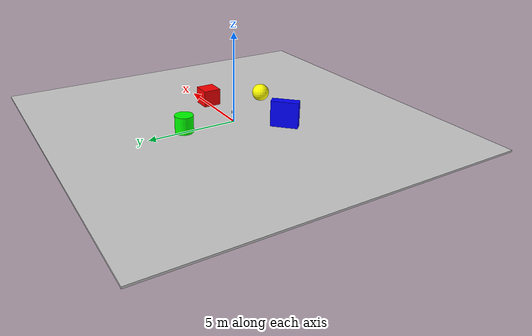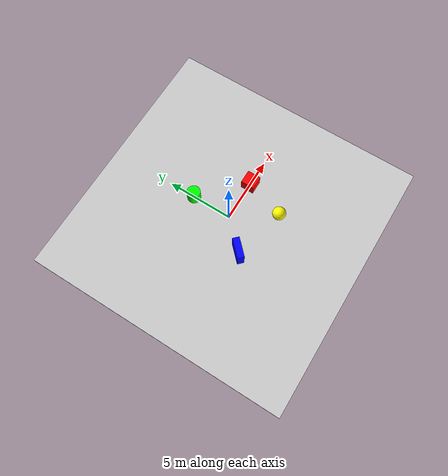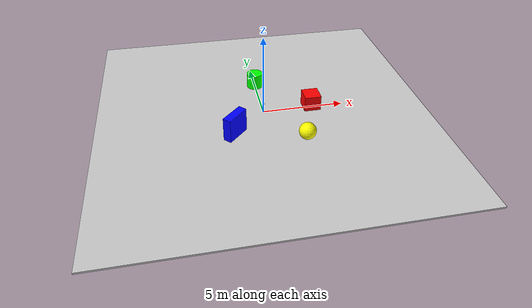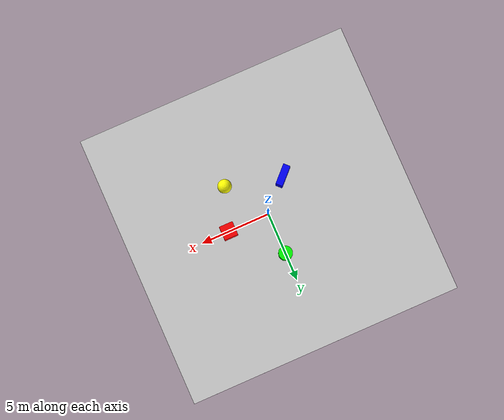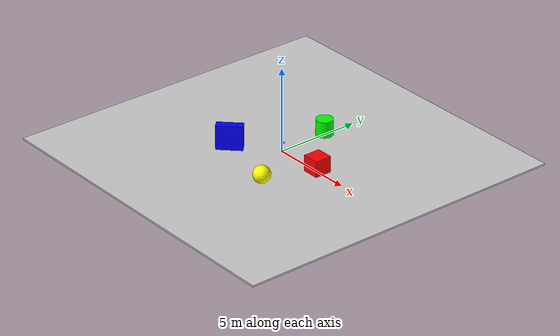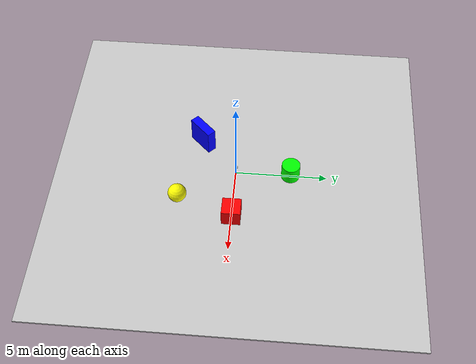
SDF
<?xml version="1.0" ?>
<sdf version="1.6">
  <world name="cpu_lidar_hard_headless">

    <physics name="1ms" type="dart">
      <max_step_size>0.001</max_step_size>
      <real_time_factor>1.0</real_time_factor>
      <dart>
        <collision_detector>bullet</collision_detector>
      </dart>
    </physics>

    <plugin
      filename="gz-sim-physics-system"
      name="gz::sim::systems::Physics">
    </plugin>
    <plugin
      filename="gz-sim-cpu-lidar-system"
      name="gz::sim::systems::CpuLidar">
    </plugin>
    <plugin
      filename="gz-sim-scene-broadcaster-system"
      name="gz::sim::systems::SceneBroadcaster">
    </plugin>
    <plugin
      filename="gz-sim-user-commands-system"
      name="gz::sim::systems::UserCommands">
    </plugin>

    <light type="directional" name="sun">
      <cast_shadows>true</cast_shadows>
      <pose>0 0 10 0 0 0</pose>
      <diffuse>0.8 0.8 0.8 1</diffuse>
      <specular>0.2 0.2 0.2 1</specular>
      <attenuation>
        <range>1000</range>
        <constant>0.9</constant>
        <linear>0.01</linear>
        <quadratic>0.001</quadratic>
      </attenuation>
      <direction>-0.5 0.1 -0.9</direction>
    </light>

    <!-- Ground plane -->
    <model name="ground_plane">
      <static>true</static>
      <link name="link">
        <collision name="collision">
          <geometry>
            <box>
              <size>20 20 0.1</size>
            </box>
          </geometry>
        </collision>
        <visual name="visual">
          <geometry>
            <box>
              <size>20 20 0.1</size>
            </box>
          </geometry>
          <material>
            <ambient>0.8 0.8 0.8 1</ambient>
            <diffuse>0.8 0.8 0.8 1</diffuse>
            <specular>0.8 0.8 0.8 1</specular>
          </material>
        </visual>
      </link>
    </model>

    <!-- Obstacle: box in front (+X) -->
    <model name="box_front">
      <static>true</static>
      <pose>3 0 0.5 0 0 0</pose>
      <link name="link">
        <collision name="collision">
          <geometry><box><size>1 1 1</size></box></geometry>
        </collision>
        <visual name="visual">
          <geometry><box><size>1 1 1</size></box></geometry>
          <material>
            <ambient>1 0 0 1</ambient>
            <diffuse>1 0 0 1</diffuse>
          </material>
        </visual>
      </link>
    </model>

    <!-- Obstacle: cylinder to the left (+Y) -->
    <model name="cylinder_left">
      <static>true</static>
      <pose>0 3 0.5 0 0 0</pose>
      <link name="link">
        <collision name="collision">
          <geometry>
            <cylinder><radius>0.5</radius><length>1.0</length></cylinder>
          </geometry>
        </collision>
        <visual name="visual">
          <geometry>
            <cylinder><radius>0.5</radius><length>1.0</length></cylinder>
          </geometry>
          <material>
            <ambient>0 1 0 1</ambient>
            <diffuse>0 1 0 1</diffuse>
          </material>
        </visual>
      </link>
    </model>

    <!-- Obstacle: box behind-right (-X, -Y) -->
    <model name="box_behind_right">
      <static>true</static>
      <pose>-2 -2 0.75 0 0 0.785</pose>
      <link name="link">
        <collision name="collision">
          <geometry><box><size>1.5 0.5 1.5</size></box></geometry>
        </collision>
        <visual name="visual">
          <geometry><box><size>1.5 0.5 1.5</size></box></geometry>
          <material>
            <ambient>0 0 1 1</ambient>
            <diffuse>0 0 1 1</diffuse>
          </material>
        </visual>
      </link>
    </model>

    <!-- Obstacle: sphere to the right (+X, -Y) -->
    <model name="sphere_right">
      <static>true</static>
      <pose>2 -3 0.5 0 0 0</pose>
      <link name="link">
        <collision name="collision">
          <geometry><sphere><radius>0.5</radius></sphere></geometry>
        </collision>
        <visual name="visual">
          <geometry><sphere><radius>0.5</radius></sphere></geometry>
          <material>
            <ambient>1 1 0 1</ambient>
            <diffuse>1 1 0 1</diffuse>
          </material>
        </visual>
      </link>
    </model>

    <!-- Lidar platform with CPU lidar sensor -->
    <model name="lidar_platform">
      <static>false</static>
      <pose>0 0 0.5 0 0 0</pose>
      <link name="link">
        <pose>0.05 0.05 0.05 0 0 0</pose>
        <inertial>
          <mass>0.1</mass>
          <inertia>
            <ixx>0.000166667</ixx>
            <iyy>0.000166667</iyy>
            <izz>0.000166667</izz>
          </inertia>
        </inertial>
        <collision name="collision">
          <geometry><box><size>0.1 0.1 0.1</size></box></geometry>
        </collision>
        <visual name="visual">
          <geometry><box><size>0.1 0.1 0.1</size></box></geometry>
        </visual>

        <sensor name="cpu_lidar" type="lidar">
          <gz:frame_id>lidar_frame</gz:frame_id>
          <topic>/cpu_lidar</topic>
          <update_rate>10</update_rate>
          <always_on>1</always_on>
          <visualize>false</visualize>
          <ray>
            <scan>
              <horizontal>
                <samples>640</samples>
                <resolution>1</resolution>
                <min_angle>-3.14159</min_angle>
                <max_angle>3.14159</max_angle>
              </horizontal>
              <vertical>
                <samples>1</samples>
                <resolution>1</resolution>
                <min_angle>0</min_angle>
                <max_angle>0</max_angle>
              </vertical>
            </scan>
            <range>
              <min>0.08</min>
              <max>10.0</max>
              <resolution>0.01</resolution>
            </range>
          </ray>
        </sensor>
      </link>

      <plugin
        filename="gz-sim-velocity-control-system"
        name="gz::sim::systems::VelocityControl">
        <initial_angular>0 0 0.35</initial_angular>
      </plugin>
    </model>

  </world>
</sdf>
